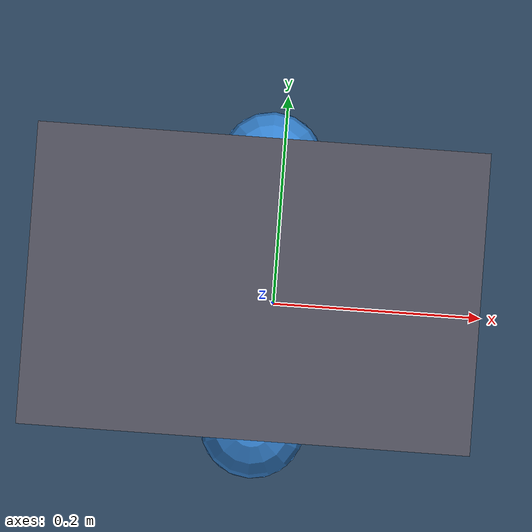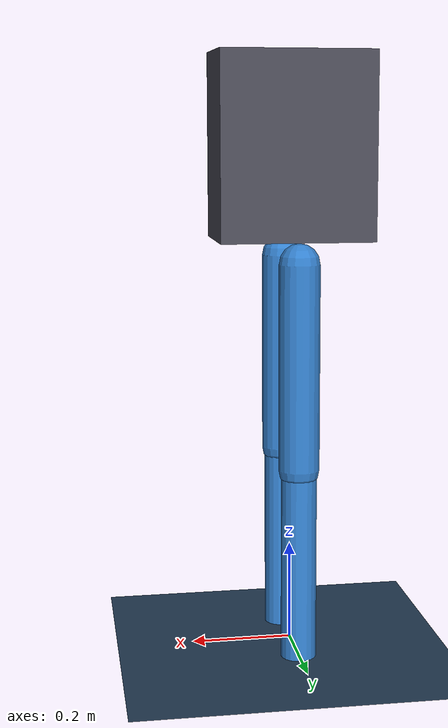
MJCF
<mujoco model="robot_2d_inference_scene">

  <include file="../../../assets/biped_2d/robot_2d.xml"/>

  <statistic center="0 0 0.5" extent="1.2"/>

  <visual>
    <headlight diffuse="0.6 0.6 0.6" ambient="0.3 0.3 0.3" specular="0 0 0"/>
    <rgba haze="0.15 0.25 0.35 1"/>
    <global azimuth="90" elevation="-20"/>
  </visual>

  <asset>
    <texture type="skybox" builtin="gradient" rgb1="0.3 0.5 0.7" rgb2="0 0 0"
             width="512" height="3072"/>
    <texture type="2d" name="groundplane" builtin="checker" mark="edge"
             rgb1="0.2 0.3 0.4" rgb2="0.1 0.2 0.3" markrgb="0.8 0.8 0.8"
             width="300" height="300"/>
    <material name="groundplane" texture="groundplane" texuniform="true"
              texrepeat="5 5" reflectance="0.2"/>
  </asset>

  <worldbody>
    <light pos="0 0 3.5" dir="0 0 -1" directional="true"/>
    <geom name="terrain" type="plane" size="0 0 0.05" material="groundplane"
          friction="1.0 0.005 0.0001"/>
  </worldbody>
</mujoco>

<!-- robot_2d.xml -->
<mujoco model="BipeD-prims-2d">
  <compiler angle="radian" balanceinertia="true" discardvisual="false" />

  <option timestep="0.002" solver="Newton" jacobian="sparse">
    <flag contact="enable"/>
  </option>

  <default>
    <geom solref="0.002 1" solimp="0.9 0.95 0.001 0.5 2"/>
    <joint damping="0.1" armature="0.01" />
  </default>

  <default>
    <default class="leg_joint">
      <joint type="hinge" axis="0 1 0"/>
    </default>

    <default class="thigh">
      <geom type="capsule" size="0.04" rgba="0.2 0.5 0.8 1" density="900"/>
    </default>
    <default class="shin">
      <geom type="capsule" size="0.035" rgba="0.2 0.5 0.8 1" density="900"/>
    </default>
    <default class="foot">
      <geom type="sphere" size="0.03" rgba="0.9 0.3 0.2 1" density="900"/>
    </default>
  </default>

  <worldbody>

    <body name="base" pos="0 0 1.0">
      <joint name="root_x" type="slide" axis="1 0 0" damping="0" armature="0"/>
      <joint name="root_z" type="slide" axis="0 0 1" damping="0" armature="0"/>
      <joint name="root_pitch" type="hinge" axis="0 1 0" damping="0" armature="0"/>

      <geom name="torso" type="box" size="0.15 0.10 0.18" rgba="0.3 0.3 0.35 1" mass="0.35 "/>
      <site name="imu" pos="0 0 0" size="0.02" rgba="1 1 0 1"/>

      <body name="thigh_right" pos="0 -0.1 -0.22">
        <joint name="hip_right" class="leg_joint" range="-2.0 2.0"/>
        <geom name="thigh_right" class="thigh" fromto="0 0 0 0 0 -0.4"/>

        <body name="shin_right" pos="0 0 -0.4">
          <joint name="knee_right" class="leg_joint" range="-2.5 0.0"/>
          <geom name="shin_right" class="shin" fromto="0 0 0 0 0 -0.4"/>

          <body name="foot_right" pos="0 0 -0.4">
            <geom name="foot_right" class="foot"/>
            <site name="foot_right_site" pos="0 0 0" size="0.031" rgba="1 1 0 0.3"/>
          </body>
        </body>
      </body>

      <body name="thigh_left" pos="0 0.1 -0.22">
        <joint name="hip_left" class="leg_joint" range="-2.0 2.0"/>
        <geom name="thigh_left" class="thigh" fromto="0 0 0 0 0 -0.4"/>

        <body name="shin_left" pos="0 0 -0.4">
          <joint name="knee_left" class="leg_joint" range="-2.5 0.0"/>
          <geom name="shin_left" class="shin" fromto="0 0 0 0 0 -0.4"/>

          <body name="foot_left" pos="0 0 -0.4">
            <geom name="foot_left" class="foot"/>
            <site name="foot_left_site" pos="0 0 0" size="0.031" rgba="1 1 0 0.3"/>
          </body>
        </body>
      </body>
    </body>
  </worldbody>

</mujoco>
